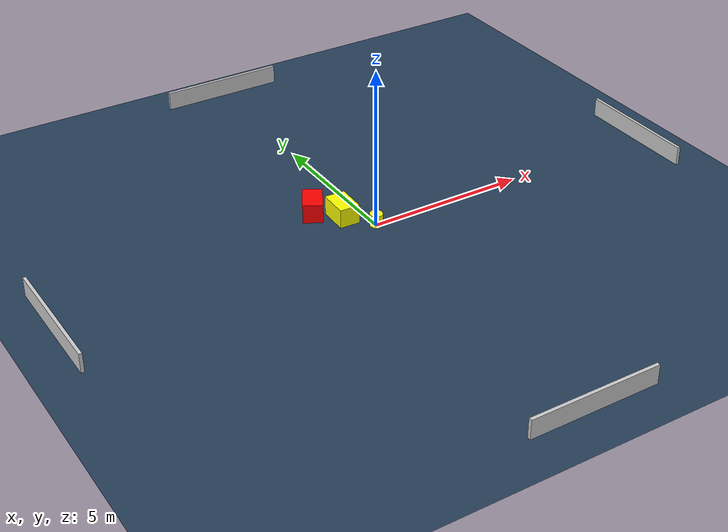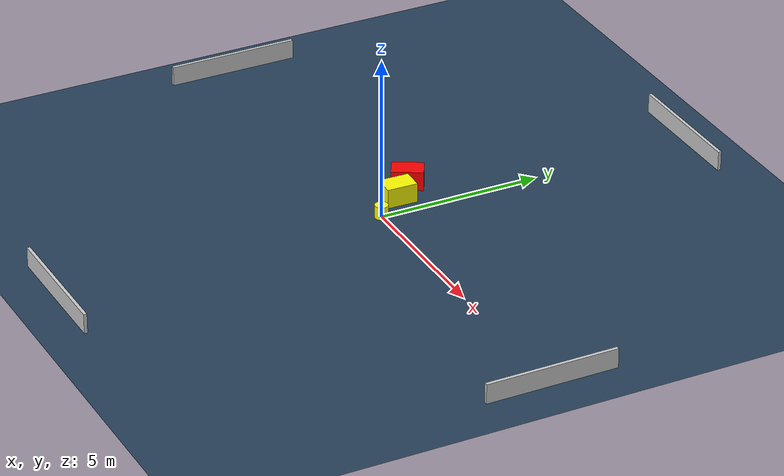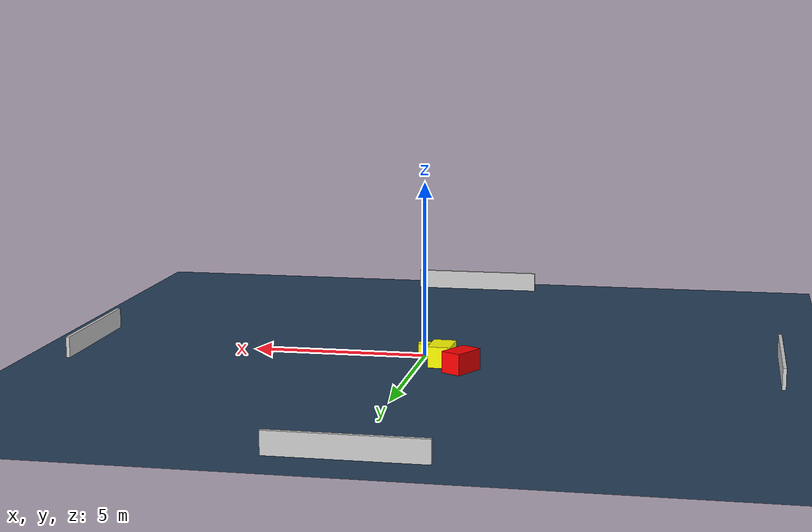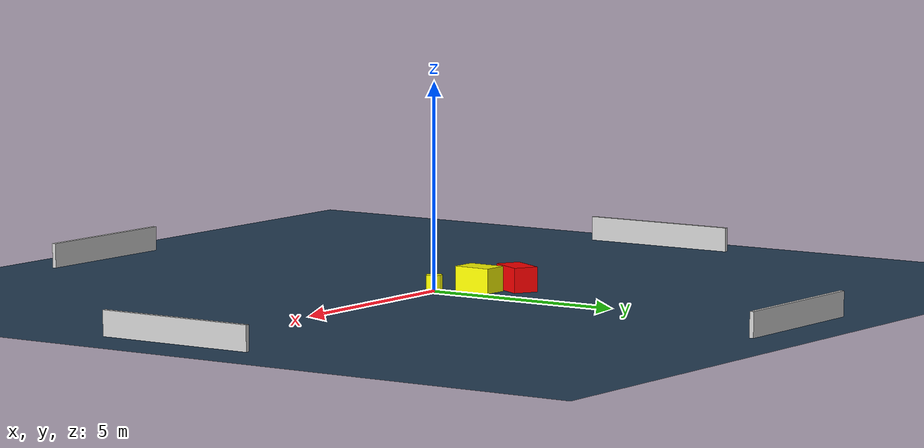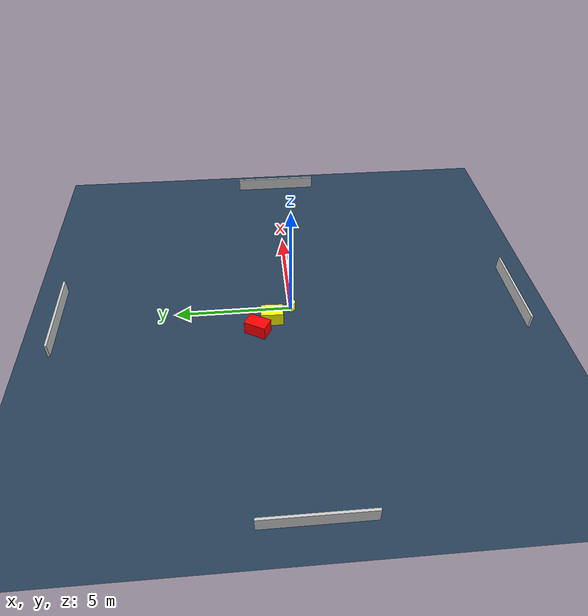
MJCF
<?xml version="1.0" ?>
<mujoco model="generated_environment">
  <option timestep="0.01" integrator="RK4" cone="elliptic"/>
  <default>
    <geom density="1"/>
  </default>
  <asset>
    <texture builtin="gradient" height="3072" name="skybox" rgb1="0.3 0.5 0.7" rgb2="0 0 0" type="skybox" width="512"/>
    <texture builtin="checker" height="300" name="groundplane" rgb1="0.2 0.3 0.4" rgb2="0.1 0.2 0.3" type="2d" width="300"/>
    <material name="groundplane" reflectance="0.2" texrepeat="5 5" texture="groundplane"/>
  </asset>
  <worldbody>
    <light dir="0 0 -1" directional="true" pos="0 0 1.5"/>
    <geom condim="3" friction="0.5 0.005 0.001" material="groundplane" name="floor" pos="0 0 0" size="0 0 0.05" type="plane"/>
    <body name="walls">
      <geom name="wall_1" condim="4" pos="-10.0 0.0 0.3" rgba="0.800000011920929 0.800000011920929 0.800000011920929 1.0" size="0.05 2.0 0.3" type="box"/>
      <geom name="wall_2" condim="4" pos="10.0 0.0 0.3" rgba="0.800000011920929 0.800000011920929 0.800000011920929 1.0" size="0.05 2.0 0.3" type="box"/>
      <geom name="wall_3" condim="4" pos="0.0 -10.0 0.3" rgba="0.800000011920929 0.800000011920929 0.800000011920929 1.0" size="2.0 0.05 0.3" type="box"/>
      <geom name="wall_4" condim="4" pos="0.0 10.0 0.3" rgba="0.800000011920929 0.800000011920929 0.800000011920929 1.0" size="2.0 0.05 0.3" type="box"/>
    </body>
    <body name="robot">
      <joint name="joint_x" type="slide" pos="0 0 0" axis="1 0 0"/>
      <joint name="joint_y" type="slide" pos="0 0 0" axis="0 1 0"/>
      <geom name="robot" type="cylinder" pos="0.0 0.0 0.2" size="0.2 0.2 0.0" mass="5.0" friction="1.0 0.005 0.0001" condim="4" rgba="1.0 1.0 0.0 1.0"/>
    </body>
    <body name="obstacle_1_movable">
      <geom name="obstacle_1_movable" condim="4" pos="-0.6483941862552706 0.8569782204648684 0.3" euler="0 0 358.17343062438675" friction="0.0 0.005 0.001" rgba="1.0 1.0 0.0 1.0" size="0.3223773509627672 0.4703558473412545 0.3" type="box" mass="0.1"/>
      <joint type="free"/>
    </body>
    <body name="obstacle_2_static">
      <geom name="obstacle_2_static" condim="4" pos="-1.290997130606372 1.4987233359897223 0.3" euler="0 0 60.853681680756225" friction="0.0 0.005 0.001" rgba="1.0 0.0 0.0 1.0" size="0.4766474648254959 0.30357812470324147 0.3" type="box"/>
    </body>
  </worldbody>
  <actuator>
    <motor name="actuator_x" joint="joint_x" gear="1" ctrlrange="-1 1"/>
    <motor name="actuator_y" joint="joint_y" gear="1" ctrlrange="-1 1"/>
  </actuator>
</mujoco>
